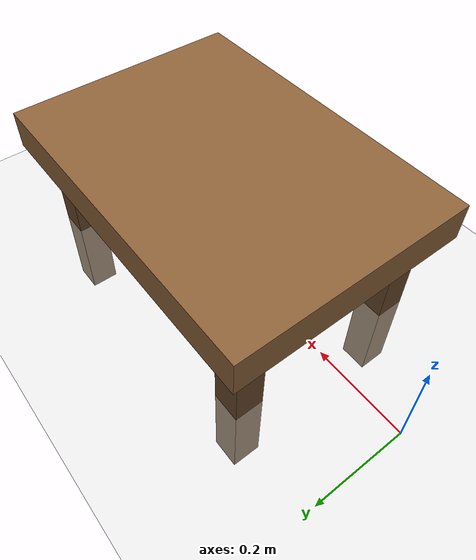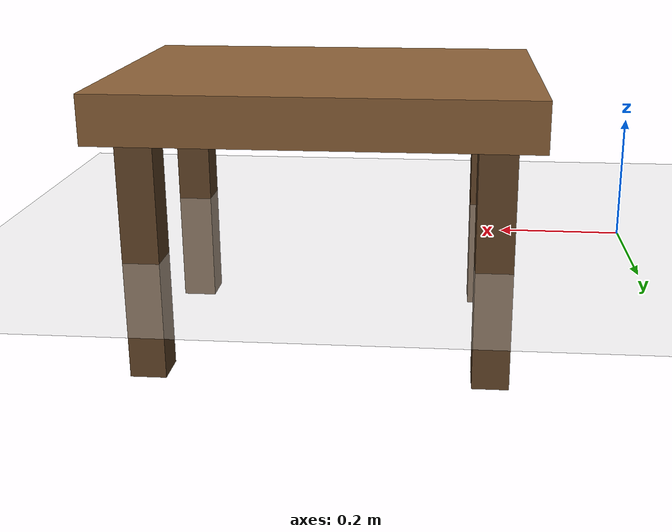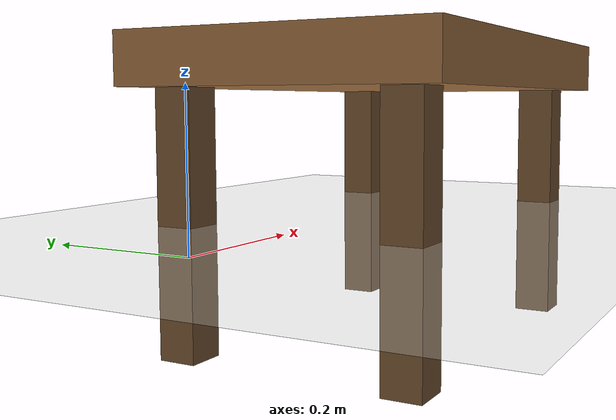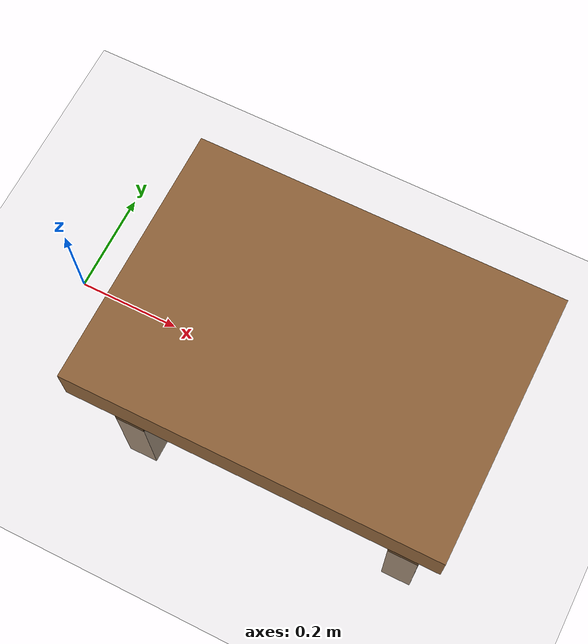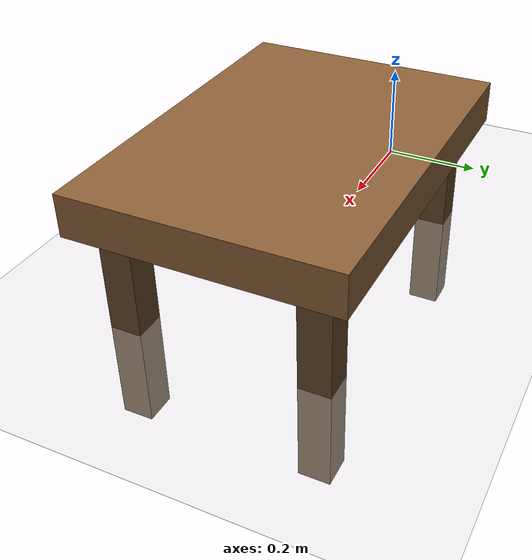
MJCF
<mujoco model="workbench">
  <worldbody>
    <geom name="floor" type="plane" size="2 2 0.1" rgba="0.85 0.85 0.85 1"/>
    <body name="table" pos="0.5 0 0.2">
      <geom name="table_top" type="box" size="0.35 0.25 0.04" pos="0 0 0.04"
            rgba="0.55 0.38 0.22 1" friction="1 0.5 0.01"/>
      <geom name="table_leg_1" type="box" size="0.03 0.03 0.2" pos="0.28 0.18 -0.2"
            rgba="0.4 0.28 0.16 1"/>
      <geom name="table_leg_2" type="box" size="0.03 0.03 0.2" pos="0.28 -0.18 -0.2"
            rgba="0.4 0.28 0.16 1"/>
      <geom name="table_leg_3" type="box" size="0.03 0.03 0.2" pos="-0.28 0.18 -0.2"
            rgba="0.4 0.28 0.16 1"/>
      <geom name="table_leg_4" type="box" size="0.03 0.03 0.2" pos="-0.28 -0.18 -0.2"
            rgba="0.4 0.28 0.16 1"/>
    </body>
  </worldbody>
</mujoco>
